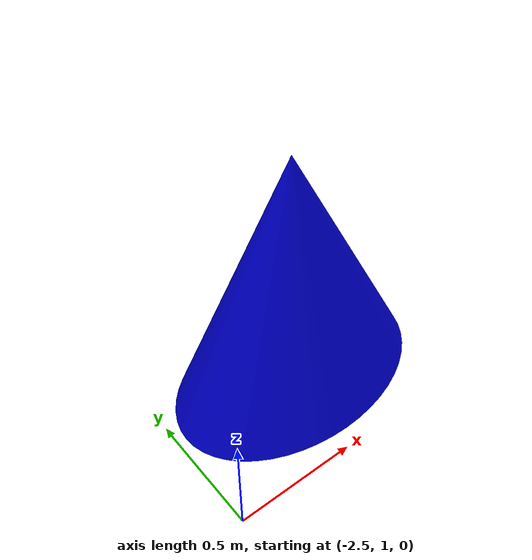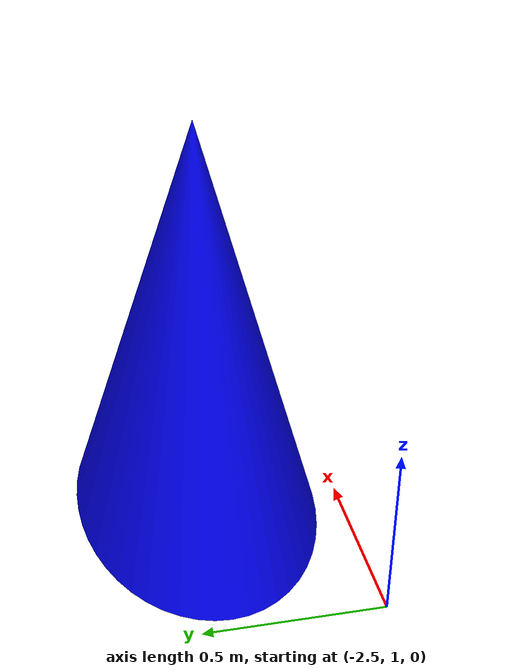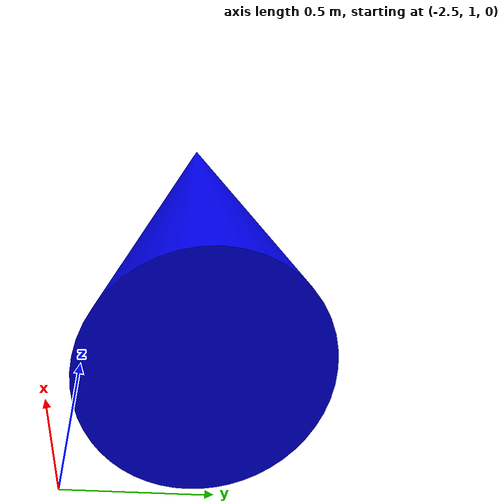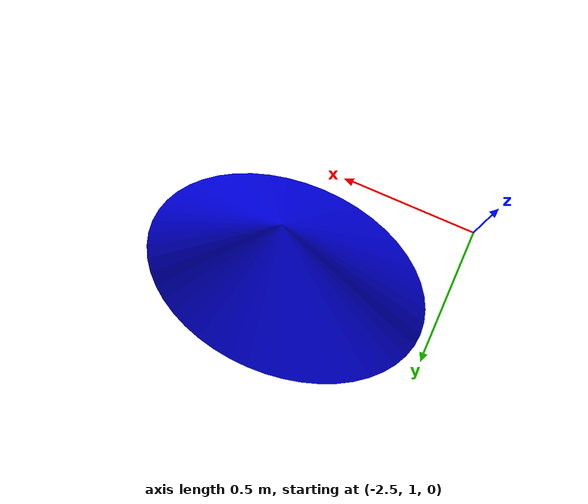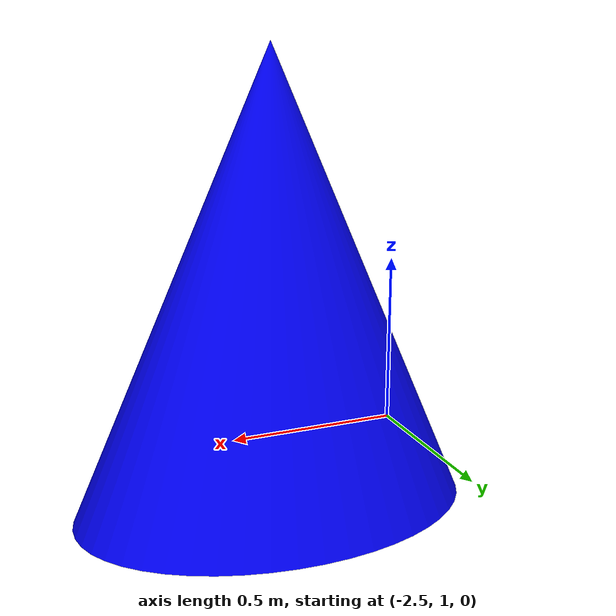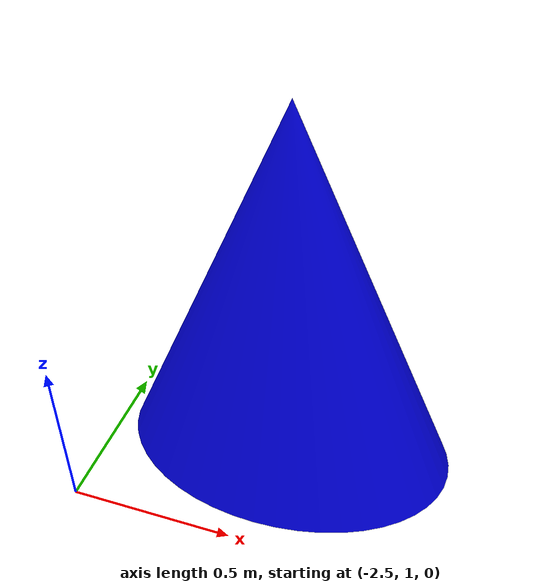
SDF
<?xml version="1.0" ?>
<sdf version="1.5">

  <model name="obstacle_2">
  <static>true</static>
  <link name="link">
    <pose>0.37 12.5 0 0 0 0</pose>
    <collision name="collision">
      <geometry>
        <mesh>
          <uri>model://obstacle_2/mesh/obstacle_2.stl</uri>
          <scale>0.9 0.9 0.1</scale>
        </mesh>
      </geometry>
    </collision>
    <visual name="visual">
      <cast_shadows>true</cast_shadows>
      <geometry>
        <mesh>
          <uri>model://obstacle_2/mesh/obstacle_2.stl</uri>
          <scale>0.9 0.9 0.1</scale>
        </mesh>
      </geometry>
      <material>
        <ambient>0 0 1 1</ambient>
        <diffuse>0 0 1 1</diffuse>
        <specular>0 0 0 0</specular>
      </material>
    </visual>
  </link>
</model>
</sdf>
